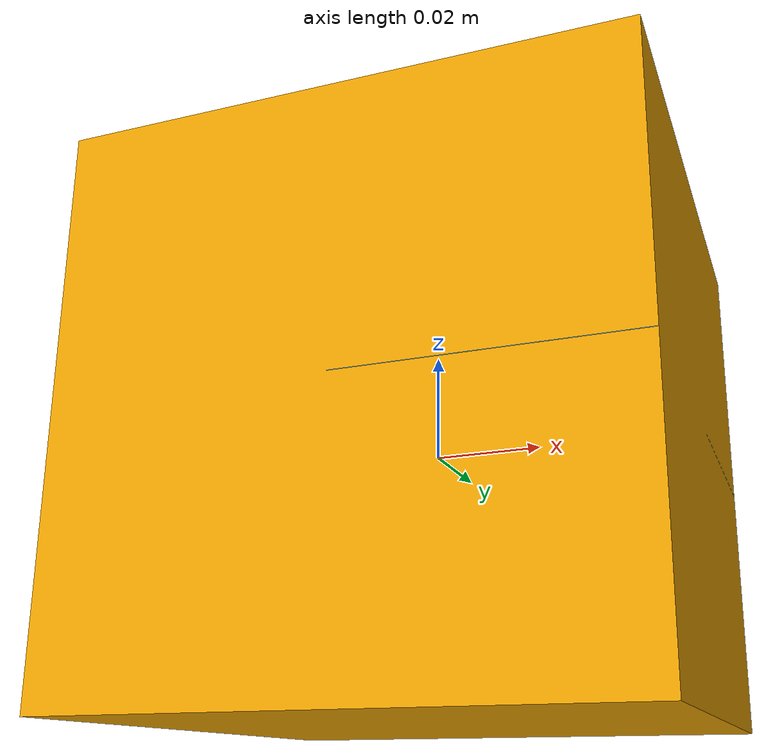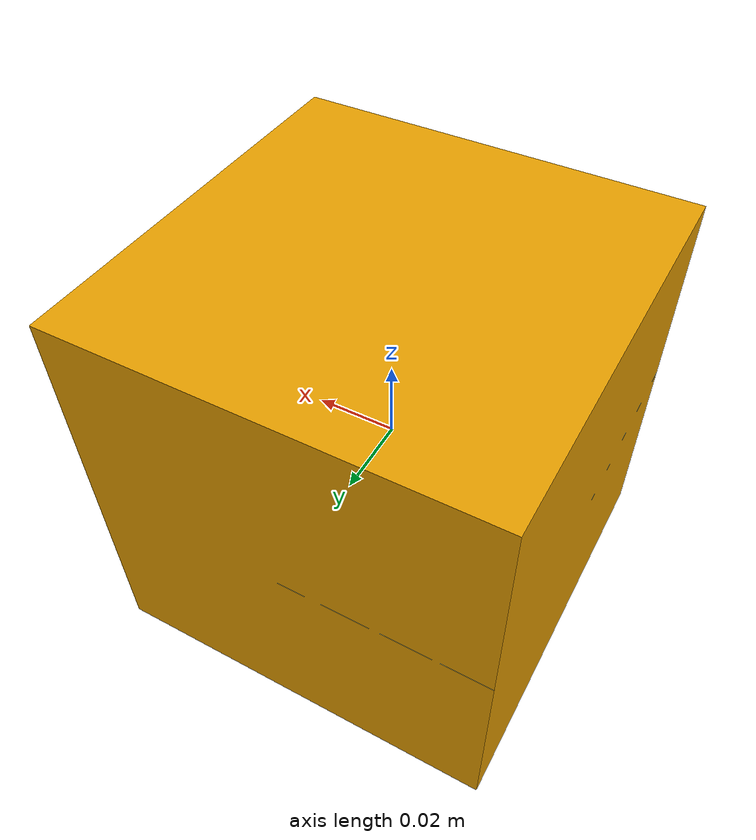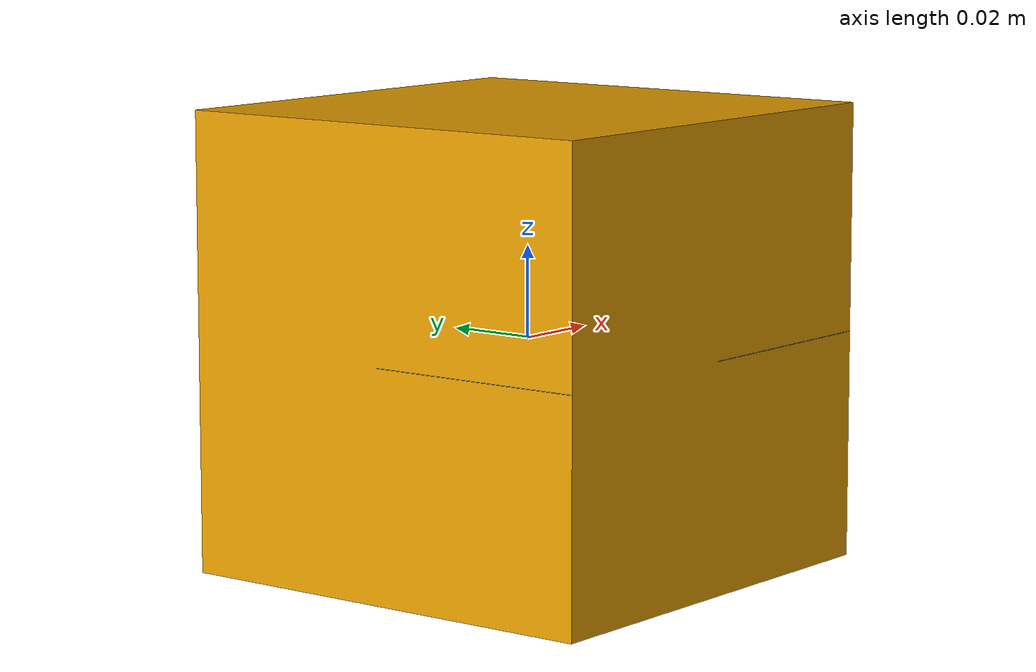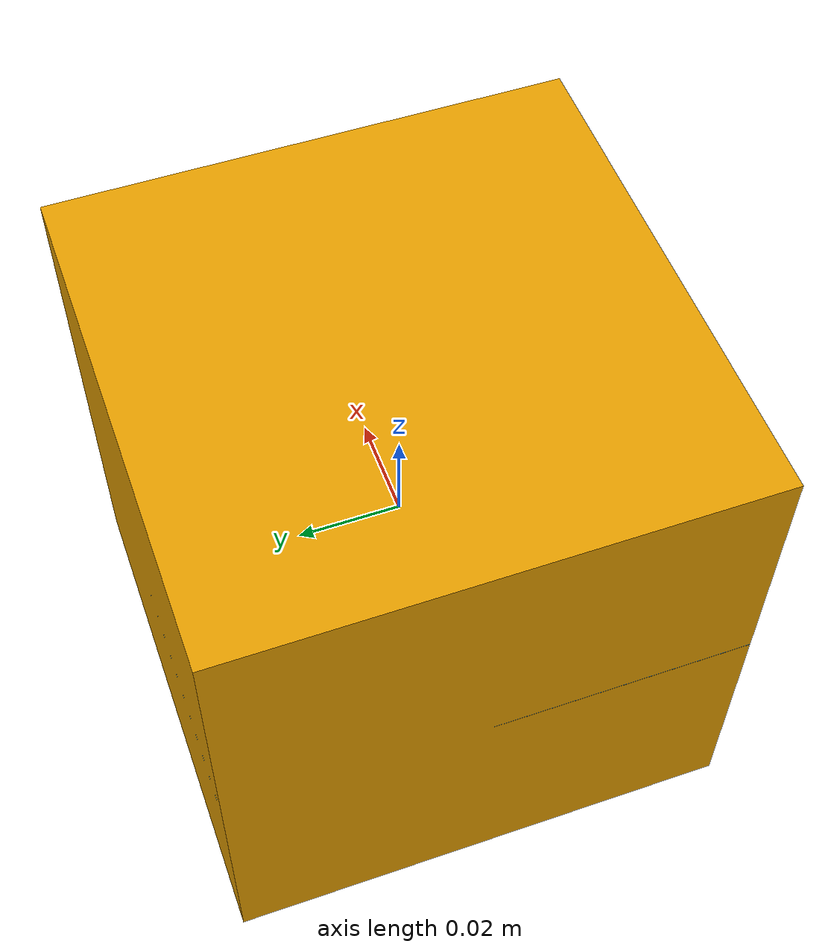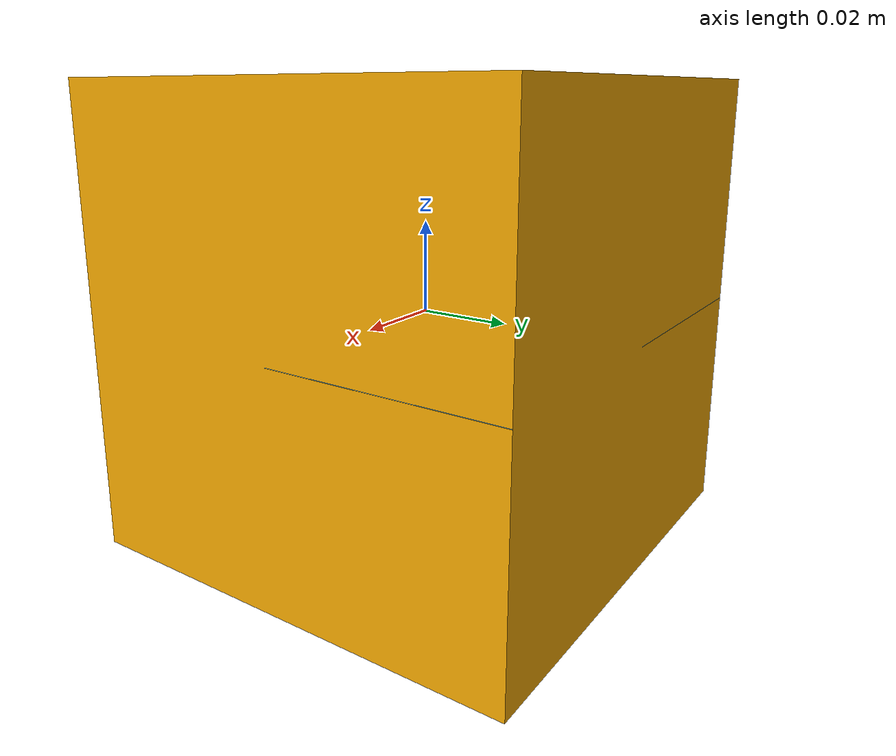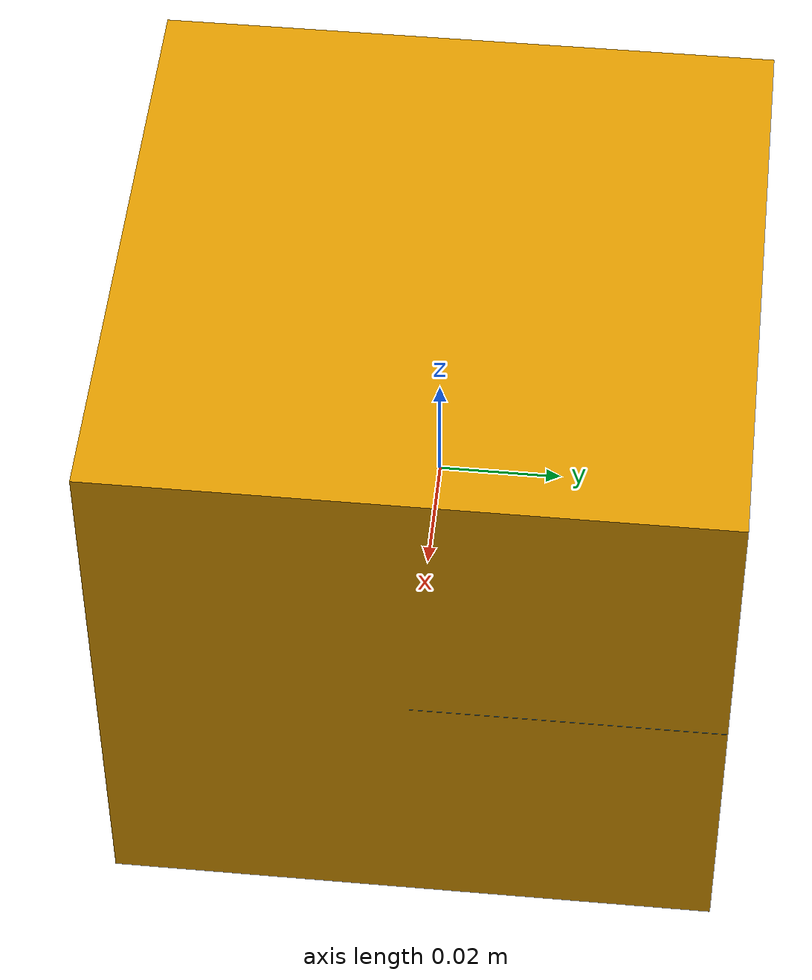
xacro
<?xml version="1.0"?>
<robot name="tag" xmlns:xacro="http://www.ros.org/wiki/xacro">

  <link name="box">
    <collision>
      <origin xyz="1 1 0" rpy="0 0 0"/>
      <geometry>
    <box size="0.1 0.1 0.1"/>
      </geometry>
    </collision>
    <visual>
      <origin xyz="0 0 0" rpy="0 0 0"/>
      <geometry>
    <box size="0.1 0.1 0.1"/>
      </geometry>
    </visual>

    <inertial>
      <mass value="1e-5" />
      <origin xyz="0 0 0" rpy="0 0 0"/>
      <inertia ixx="1e-6" ixy="0" ixz="0" iyy="1e-6" iyz="0" izz="1e-6" />
    </inertial>
  </link>
  <link name="artag4">
    <visual>
      <origin rpy="0 0 0" xyz="0 0 0"/>
      <geometry>
        <mesh filename="package://manipulator-control/meshes/tag.dae"/>
      </geometry>
    </visual>
    <collision>
      <origin rpy="0 0 0" xyz="0 0 0"/>
      <geometry>
        <mesh filename="package://manipulator-control/meshes/tag.dae"/>
      </geometry>
    </collision>
    <inertial>
      <origin rpy="0 0 0" xyz="0 0 0"/>
      <mass value="0.01052000"/>
      <inertia ixx="8.76754333e-6" ixy="0" ixz="0" iyx="0" iyy="8.76754333e-6" iyz="0" izx="0" izy="0" izz="1.75333333e-5"/>
    </inertial>
  </link>
  <joint name="tag_joint" type="fixed">
    <parent link="box"/>
    <child link="artag4"/>
    <origin rpy="0 0 -1.571" xyz="0 0 0"/>
  </joint>
</robot>
